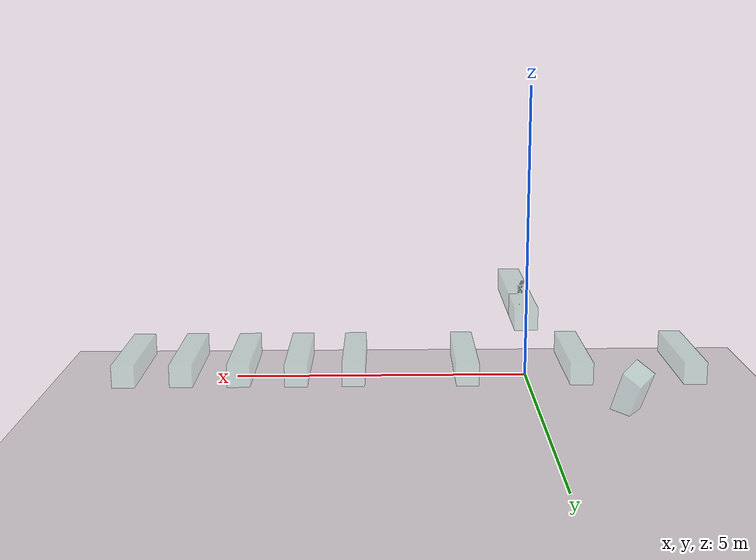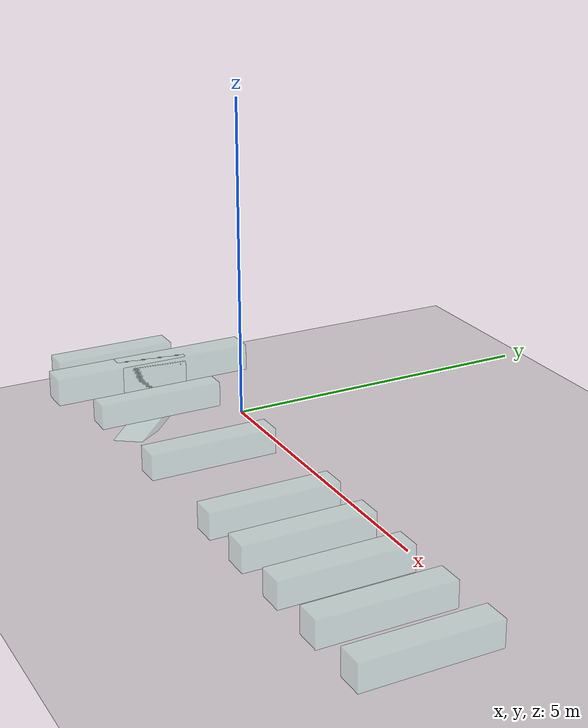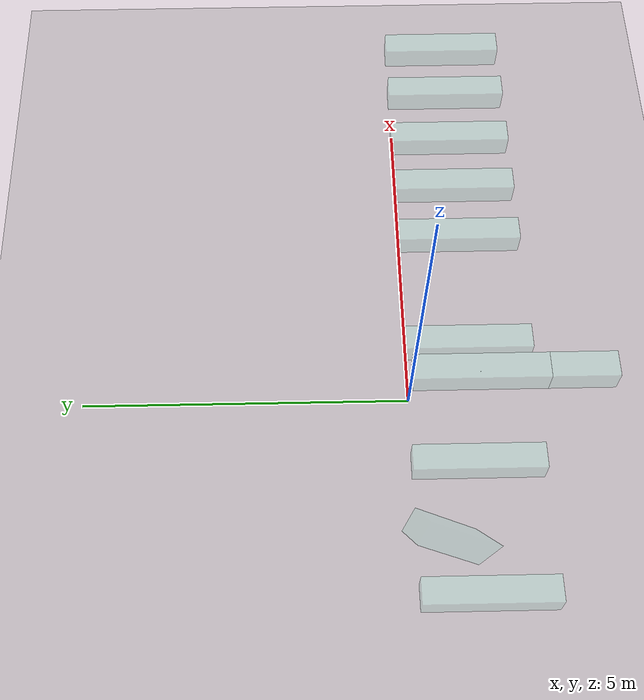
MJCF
<!-- For validating constraint dynamics:

* connect, weld, joint constraints
* collision and joint limits for ball and 1d joints
* solref, solimp
-->
<mujoco>
  <option timestep="0.015" impratio="1.5"/>

  <default>
    <default class="box">
      <geom type="box" size=".2" fromto="0 0 0 0 -2 0" rgba=".4 .7 .6 .3"  contype="0"/>
    </default>
  </default>

  <worldbody>
    <geom pos="0 0 -1" type="plane" size="20 20 .01" condim="1"/>

    <site name="site0" pos="0 0 1"/>
    <body name="body1" pos="0 0 1">
      <freejoint/>
      <geom class="box"/>
      <site name="site1"/>
    </body>

    <site name="site2" pos="0 -1 1"/>
    <body name="body2" pos="0 -1 1">
      <freejoint/>
      <geom class="box"/>
      <site name="site3"/>
    </body>

    <body name="anchor1" pos="-3 0 0"/>
    <body name="beam1" pos="-3 0 0">
      <joint name="joint1" type="hinge" axis="0 1 0" solreflimit="0.03 0.9" solimplimit="0.89 0.9 0.01 2.1"/>
      <geom class="box"/>
    </body>

    <body name="anchor2" pos="-1 0 0"/>
    <body name="beam2" pos="-1 0 0">
      <freejoint align="false"/>
      <geom class="box"/>
    </body>

    <body name="beam3" pos="1 0 0">
      <joint name="joint3" axis="1 0 0" type="hinge" range="-20 20" frictionloss="0.1"/>
      <geom class="box"/>
    </body>

    <body name="beam4" pos="3 0 0">
      <joint name="joint4" axis="1 0 0" type="hinge" damping="1.0"/> <!-- tests no joint range -->
      <geom class="box"/>
    </body>

    <body name="beam5" pos="-2 0 0" euler="45 45 0">
      <joint name="joint5" type="hinge" axis="1 0 0" range="0 45" solreflimit="-100 -1"/> <!-- test negative solref -->
      <geom class="box"/>
    </body>

    <body name="box_condim1" pos="4 0 0">
      <freejoint align="false"/>
      <geom class="box" condim="1"/>
    </body>

    <body name="box_condim3" pos="5 0 0">
      <freejoint align="false"/>
      <geom class="box" condim="3"/>
    </body>

    <body name="box_condim4" pos="6 0 0">
      <freejoint align="false"/>
      <geom class="box" condim="4"/>
    </body>

    <body name="box_condim6" pos="7 0 0">
      <freejoint align="false"/>
      <geom class="box" condim="6"/>
    </body>
  </worldbody>

  <contact>
    <!-- Exclude self-collisions between all bodies to test equality constraints without collision interference -->
    <exclude body1="body1" body2="body2"/>
    <exclude body1="body1" body2="beam1"/>
    <exclude body1="body1" body2="beam2"/>
    <exclude body1="body1" body2="beam3"/>
    <exclude body1="body1" body2="beam4"/>
    <exclude body1="body1" body2="beam5"/>
    <exclude body1="body1" body2="box_condim1"/>
    <exclude body1="body1" body2="box_condim3"/>
    <exclude body1="body1" body2="box_condim4"/>
    <exclude body1="body1" body2="box_condim6"/>
    <exclude body1="body2" body2="beam1"/>
    <exclude body1="body2" body2="beam2"/>
    <exclude body1="body2" body2="beam3"/>
    <exclude body1="body2" body2="beam4"/>
    <exclude body1="body2" body2="beam5"/>
    <exclude body1="body2" body2="box_condim1"/>
    <exclude body1="body2" body2="box_condim3"/>
    <exclude body1="body2" body2="box_condim4"/>
    <exclude body1="body2" body2="box_condim6"/>
    <exclude body1="anchor1" body2="anchor2"/>
    <exclude body1="anchor1" body2="beam1"/>
    <exclude body1="anchor1" body2="beam2"/>
    <exclude body1="anchor1" body2="beam3"/>
    <exclude body1="anchor1" body2="beam4"/>
    <exclude body1="anchor1" body2="beam5"/>
    <exclude body1="anchor2" body2="beam1"/>
    <exclude body1="anchor2" body2="beam2"/>
    <exclude body1="anchor2" body2="beam3"/>
    <exclude body1="anchor2" body2="beam4"/>
    <exclude body1="anchor2" body2="beam5"/>
    <exclude body1="beam1" body2="beam2"/>
    <exclude body1="beam1" body2="beam3"/>
    <exclude body1="beam1" body2="beam4"/>
    <exclude body1="beam1" body2="beam5"/>
    <exclude body1="beam1" body2="box_condim1"/>
    <exclude body1="beam1" body2="box_condim3"/>
    <exclude body1="beam1" body2="box_condim4"/>
    <exclude body1="beam1" body2="box_condim6"/>
    <exclude body1="beam2" body2="beam3"/>
    <exclude body1="beam2" body2="beam4"/>
    <exclude body1="beam2" body2="beam5"/>
    <exclude body1="beam2" body2="box_condim1"/>
    <exclude body1="beam2" body2="box_condim3"/>
    <exclude body1="beam2" body2="box_condim4"/>
    <exclude body1="beam2" body2="box_condim6"/>
    <exclude body1="beam3" body2="beam4"/>
    <exclude body1="beam3" body2="beam5"/>
    <exclude body1="beam3" body2="box_condim1"/>
    <exclude body1="beam3" body2="box_condim3"/>
    <exclude body1="beam3" body2="box_condim4"/>
    <exclude body1="beam3" body2="box_condim6"/>
    <exclude body1="beam4" body2="beam5"/>
    <exclude body1="beam4" body2="box_condim1"/>
    <exclude body1="beam4" body2="box_condim3"/>
    <exclude body1="beam4" body2="box_condim4"/>
    <exclude body1="beam4" body2="box_condim6"/>
    <exclude body1="beam5" body2="box_condim1"/>
    <exclude body1="beam5" body2="box_condim3"/>
    <exclude body1="beam5" body2="box_condim4"/>
    <exclude body1="beam5" body2="box_condim6"/>
    <exclude body1="box_condim1" body2="box_condim3"/>
    <exclude body1="box_condim1" body2="box_condim4"/>
    <exclude body1="box_condim1" body2="box_condim6"/>
    <exclude body1="box_condim3" body2="box_condim4"/>
    <exclude body1="box_condim3" body2="box_condim6"/>
    <exclude body1="box_condim4" body2="box_condim6"/>
  </contact>

  <equality>
    <connect name="c_site"   site1="site0"      site2="site1"/>
    <connect name="connect"  body1="anchor1"    body2="beam1"   anchor="1 0 -1" />
    <weld    name="w_site"   site1="site2"      site2="site3"   torquescale="0.1"/>
    <weld    name="weld"     body1="anchor2"    body2="beam2"   relpose="0 0 0 1 -.3 0 0" torquescale="0.002" anchor="0 -2 0"/>
    <joint   name="joint"    joint1="joint3"    joint2="joint4" polycoef="0.5 -1 0.1 0.15 0.2" />
  </equality>

  <actuator>
    <position ctrlrange="-20 20" gear="500" joint="joint1" kv="0.5" name="act1"/>
    <motor gear="50000" joint="joint3" name="act2"/>
    <motor gear="75000" joint="joint4" name="act3"/>
  </actuator>
</mujoco>
